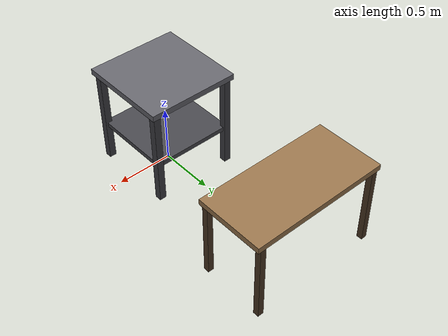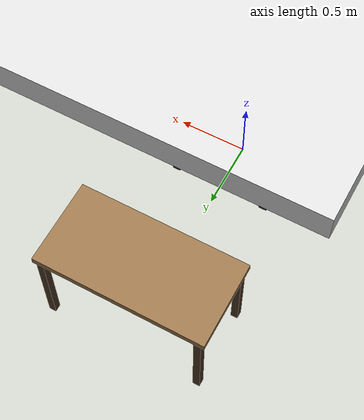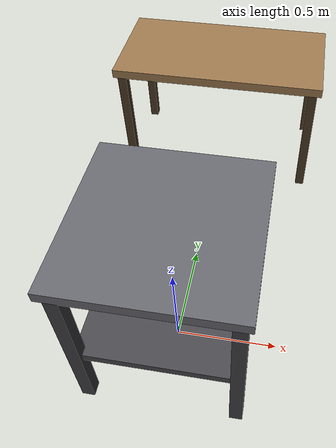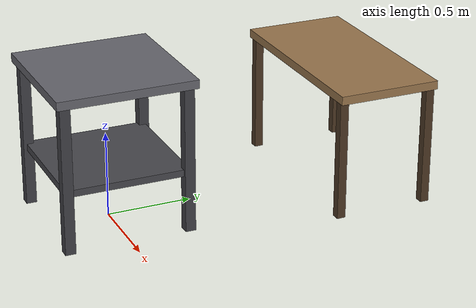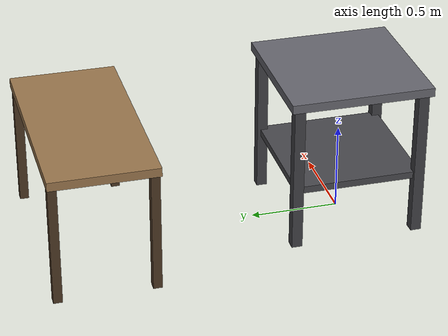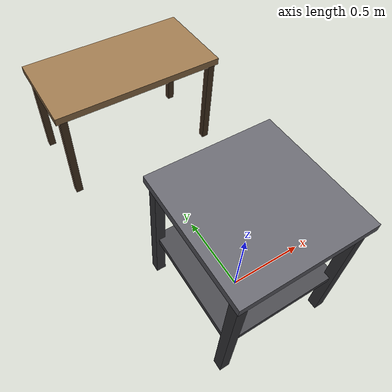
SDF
<sdf version="1.10">
 <world name="warehouse">
  <model name="ceiling">
   <static>true</static>
   <pose>0 0 4 0 0 0</pose>
   <link name="link">
    <visual name="visual">
     <geometry><box><size>12 10 0.10000000000000001</size></box></geometry>
     <material>
      <ambient>0.850000024 0.850000024 0.850000024 1</ambient>
      <diffuse>0.850000024 0.850000024 0.850000024 1</diffuse>
     </material>
    </visual>
    <inertial>
     <mass>1</mass>
     <inertia><ixx>1</ixx><ixy>0</ixy><ixz>0</ixz><iyy>1</iyy><iyz>0</iyz><izz>1</izz></inertia>
    </inertial>
   </link>
  </model>
  <model name="robot_table">
   <static>true</static>
   <link name="link">
    <visual name="top_visual">
     <pose>0 0 0.875 0 0 0</pose>
     <geometry><box><size>0.80000000000000004 0.80000000000000004 0.050000000000000003</size></box></geometry>
     <material>
      <ambient>0.349999994 0.349999994 0.379999995 1</ambient>
      <diffuse>0.400000006 0.400000006 0.430000007 1</diffuse>
      <specular>0.600000024 0.600000024 0.600000024 1</specular>
     </material>
    </visual>
    <collision name="top_collision">
     <pose>0 0 0.875 0 0 0</pose>
     <geometry><box><size>0.80000000000000004 0.80000000000000004 0.050000000000000003</size></box></geometry>
    </collision>
    <visual name="leg_FL">
     <pose>0.34999999999999998 0.34999999999999998 0.42499999999999999 0 0 0</pose>
     <geometry><box><size>0.059999999999999998 0.059999999999999998 0.84999999999999998</size></box></geometry>
     <material><ambient>0.25 0.25 0.270000011 1</ambient><diffuse>0.25 0.25 0.270000011 1</diffuse></material>
    </visual>
    <collision name="leg_FL_col">
     <pose>0.34999999999999998 0.34999999999999998 0.42499999999999999 0 0 0</pose>
     <geometry><box><size>0.059999999999999998 0.059999999999999998 0.84999999999999998</size></box></geometry>
    </collision>
    <visual name="leg_FR">
     <pose>0.34999999999999998 -0.34999999999999998 0.42499999999999999 0 0 0</pose>
     <geometry><box><size>0.059999999999999998 0.059999999999999998 0.84999999999999998</size></box></geometry>
     <material><ambient>0.25 0.25 0.270000011 1</ambient><diffuse>0.25 0.25 0.270000011 1</diffuse></material>
    </visual>
    <collision name="leg_FR_col">
     <pose>0.34999999999999998 -0.34999999999999998 0.42499999999999999 0 0 0</pose>
     <geometry><box><size>0.059999999999999998 0.059999999999999998 0.84999999999999998</size></box></geometry>
    </collision>
    <visual name="leg_BL">
     <pose>-0.34999999999999998 0.34999999999999998 0.42499999999999999 0 0 0</pose>
     <geometry><box><size>0.059999999999999998 0.059999999999999998 0.84999999999999998</size></box></geometry>
     <material><ambient>0.25 0.25 0.270000011 1</ambient><diffuse>0.25 0.25 0.270000011 1</diffuse></material>
    </visual>
    <collision name="leg_BL_col">
     <pose>-0.34999999999999998 0.34999999999999998 0.42499999999999999 0 0 0</pose>
     <geometry><box><size>0.059999999999999998 0.059999999999999998 0.84999999999999998</size></box></geometry>
    </collision>
    <visual name="leg_BR">
     <pose>-0.34999999999999998 -0.34999999999999998 0.42499999999999999 0 0 0</pose>
     <geometry><box><size>0.059999999999999998 0.059999999999999998 0.84999999999999998</size></box></geometry>
     <material><ambient>0.25 0.25 0.270000011 1</ambient><diffuse>0.25 0.25 0.270000011 1</diffuse></material>
    </visual>
    <collision name="leg_BR_col">
     <pose>-0.34999999999999998 -0.34999999999999998 0.42499999999999999 0 0 0</pose>
     <geometry><box><size>0.059999999999999998 0.059999999999999998 0.84999999999999998</size></box></geometry>
    </collision>
    <visual name="brace">
     <pose>0 0 0.34999999999999998 0 0 0</pose>
     <geometry><box><size>0.71999999999999997 0.71999999999999997 0.040000000000000001</size></box></geometry>
     <material>
      <ambient>0.280000001 0.280000001 0.300000012 1</ambient>
      <diffuse>0.280000001 0.280000001 0.300000012 1</diffuse>
     </material>
    </visual>
    <inertial>
     <mass>1</mass>
     <inertia><ixx>1</ixx><ixy>0</ixy><ixz>0</ixz><iyy>1</iyy><iyz>0</iyz><izz>1</izz></inertia>
    </inertial>
   </link>
  </model>
  <model name="pick_table">
   <static>true</static>
   <pose>0 1.4573006629943848 0 0 0 0</pose>
   <link name="link">
    <visual name="top_visual">
     <pose>0 0 0.72499999999999998 0 0 0</pose>
     <geometry><box><size>1.2 0.59999999999999998 0.050000000000000003</size></box></geometry>
     <material>
      <ambient>0.550000012 0.419999987 0.280000001 1</ambient>
      <diffuse>0.600000024 0.460000008 0.300000012 1</diffuse>
      <specular>0.200000003 0.200000003 0.200000003 1</specular>
     </material>
    </visual>
    <collision name="top_collision">
     <pose>0 0 0.72499999999999998 0 0 0</pose>
     <geometry><box><size>1.2 0.59999999999999998 0.050000000000000003</size></box></geometry>
    </collision>
    <visual name="leg_FL">
     <pose>0.55000000000000004 0.27000000000000002 0.34999999999999998 0 0 0</pose>
     <geometry><box><size>0.050000000000000003 0.050000000000000003 0.69999999999999996</size></box></geometry>
     <material>
      <ambient>0.300000012 0.219999999 0.140000001 1</ambient>
      <diffuse>0.300000012 0.219999999 0.140000001 1</diffuse>
     </material>
    </visual>
    <collision name="leg_FL_col">
     <pose>0.55000000000000004 0.27000000000000002 0.34999999999999998 0 0 0</pose>
     <geometry><box><size>0.050000000000000003 0.050000000000000003 0.69999999999999996</size></box></geometry>
    </collision>
    <visual name="leg_FR">
     <pose>0.55000000000000004 -0.27000000000000002 0.34999999999999998 0 0 0</pose>
     <geometry><box><size>0.050000000000000003 0.050000000000000003 0.69999999999999996</size></box></geometry>
     <material>
      <ambient>0.300000012 0.219999999 0.140000001 1</ambient>
      <diffuse>0.300000012 0.219999999 0.140000001 1</diffuse>
     </material>
    </visual>
    <collision name="leg_FR_col">
     <pose>0.55000000000000004 -0.27000000000000002 0.34999999999999998 0 0 0</pose>
     <geometry><box><size>0.050000000000000003 0.050000000000000003 0.69999999999999996</size></box></geometry>
    </collision>
    <visual name="leg_BL">
     <pose>-0.55000000000000004 0.27000000000000002 0.34999999999999998 0 0 0</pose>
     <geometry><box><size>0.050000000000000003 0.050000000000000003 0.69999999999999996</size></box></geometry>
     <material>
      <ambient>0.300000012 0.219999999 0.140000001 1</ambient>
      <diffuse>0.300000012 0.219999999 0.140000001 1</diffuse>
     </material>
    </visual>
    <collision name="leg_BL_col">
     <pose>-0.55000000000000004 0.27000000000000002 0.34999999999999998 0 0 0</pose>
     <geometry><box><size>0.050000000000000003 0.050000000000000003 0.69999999999999996</size></box></geometry>
    </collision>
    <visual name="leg_BR">
     <pose>-0.55000000000000004 -0.27000000000000002 0.34999999999999998 0 0 0</pose>
     <geometry><box><size>0.050000000000000003 0.050000000000000003 0.69999999999999996</size></box></geometry>
     <material>
      <ambient>0.300000012 0.219999999 0.140000001 1</ambient>
      <diffuse>0.300000012 0.219999999 0.140000001 1</diffuse>
     </material>
    </visual>
    <collision name="leg_BR_col">
     <pose>-0.55000000000000004 -0.27000000000000002 0.34999999999999998 0 0 0</pose>
     <geometry><box><size>0.050000000000000003 0.050000000000000003 0.69999999999999996</size></box></geometry>
    </collision>
    <inertial>
     <mass>1</mass>
     <inertia><ixx>1</ixx><ixy>0</ixy><ixz>0</ixz><iyy>1</iyy><iyz>0</iyz><izz>1</izz></inertia>
    </inertial>
   </link>
  </model>
 </world>
</sdf>
